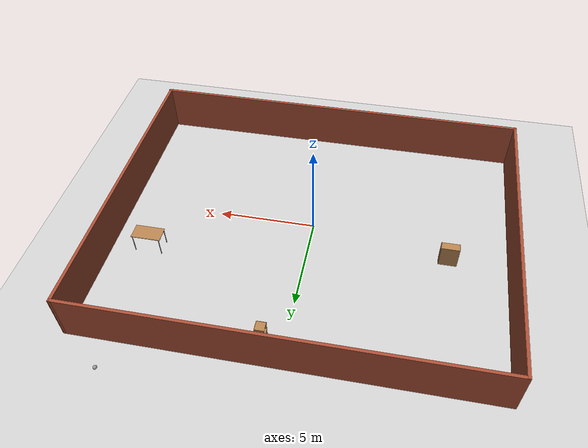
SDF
<sdf version="1.6">
 <world name="default">
  <model name="ground_plane">
   <static>1</static>
   <link name="link">
    <collision name="collision">
     <geometry><plane><normal>0 0 1</normal><size>100 100</size></plane></geometry>
     <surface>
      <contact><collide_bitmask>65535</collide_bitmask></contact>
      <friction><ode><mu>100</mu><mu2>50</mu2></ode></friction>
     </surface>
    </collision>
    <visual name="visual">
     <cast_shadows>0</cast_shadows>
     <geometry><plane><normal>0 0 1</normal><size>100 100</size></plane></geometry>
     <material>
      <script><uri>file://media/materials/scripts/gazebo.material</uri><name>Gazebo/Grey</name></script>
     </material>
    </visual>
   </link>
  </model>
  <model name="MAE">
   <pose>-0.06825 0.737019 0 0 -0 0</pose>
   <link name="Wall_1">
    <collision name="Wall_1_Collision">
     <geometry><box><size>15.577 0.15 2.5</size></box></geometry>
     <pose>0 0 1.25 0 -0 0</pose>
    </collision>
    <visual name="Wall_1_Visual">
     <pose>0 0 1.25 0 -0 0</pose>
     <geometry><box><size>15.577 0.15 2.5</size></box></geometry>
     <material>
      <script><uri>file://media/materials/scripts/gazebo.material</uri><name>Gazebo/Bricks</name></script>
      <ambient>1 1 1 1</ambient>
     </material>
     <meta><layer>0</layer></meta>
    </visual>
    <pose>-9.98245 -0.013284 0 0 0 -1.5708</pose>
   </link>
   <link name="Wall_2">
    <collision name="Wall_2_Collision">
     <geometry><box><size>20.0798 0.15 2.5</size></box></geometry>
     <pose>0 0 1.25 0 -0 0</pose>
    </collision>
    <visual name="Wall_2_Visual">
     <pose>0 0 1.25 0 -0 0</pose>
     <geometry><box><size>20.0798 0.15 2.5</size></box></geometry>
     <material>
      <script><uri>file://media/materials/scripts/gazebo.material</uri><name>Gazebo/Bricks</name></script>
      <ambient>1 1 1 1</ambient>
     </material>
     <meta><layer>0</layer></meta>
    </visual>
    <pose>0.017629 -7.7266 0 0 -0 0</pose>
   </link>
   <link name="Wall_5">
    <collision name="Wall_5_Collision">
     <geometry><box><size>15.6033 0.15 2.5</size></box></geometry>
     <pose>0 0 1.25 0 -0 0</pose>
    </collision>
    <visual name="Wall_5_Visual">
     <pose>0 0 1.25 0 -0 0</pose>
     <geometry><box><size>15.6033 0.15 2.5</size></box></geometry>
     <material>
      <script><uri>file://media/materials/scripts/gazebo.material</uri><name>Gazebo/Bricks</name></script>
      <ambient>1 1 1 1</ambient>
     </material>
     <meta><layer>0</layer></meta>
    </visual>
    <pose>9.96065 1.6e-05 0 0 -0 1.56907</pose>
   </link>
   <link name="Wall_6">
    <collision name="Wall_6_Collision">
     <geometry><box><size>20.08 0.15 2.5</size></box></geometry>
     <pose>0 0 1.25 0 -0 0</pose>
    </collision>
    <visual name="Wall_6_Visual">
     <pose>0 0 1.25 0 -0 0</pose>
     <geometry><box><size>20.08 0.15 2.5</size></box></geometry>
     <material>
      <script><uri>file://media/materials/scripts/gazebo.material</uri><name>Gazebo/Bricks</name></script>
      <ambient>1 1 1 1</ambient>
     </material>
     <meta><layer>0</layer></meta>
    </visual>
    <pose>-0.01755 7.72663 0 0 -0 3.14159</pose>
   </link>
   <static>1</static>
  </model>
  <model name="table">
   <static>1</static>
   <link name="link">
    <collision name="surface">
     <pose>0 0 1 0 -0 0</pose>
     <geometry><box><size>1.5 0.8 0.03</size></box></geometry>
     <surface><friction><ode><mu>0.6</mu><mu2>0.6</mu2></ode></friction></surface>
    </collision>
    <visual name="visual1">
     <pose>0 0 1 0 -0 0</pose>
     <geometry><box><size>1.5 0.8 0.03</size></box></geometry>
     <material>
      <script><uri>file://media/materials/scripts/gazebo.material</uri><name>Gazebo/Wood</name></script>
     </material>
    </visual>
    <collision name="front_left_leg">
     <pose>0.68 0.38 0.5 0 -0 0</pose>
     <geometry><cylinder><radius>0.02</radius><length>1</length></cylinder></geometry>
    </collision>
    <visual name="front_left_leg">
     <pose>0.68 0.38 0.5 0 -0 0</pose>
     <geometry><cylinder><radius>0.02</radius><length>1</length></cylinder></geometry>
     <material>
      <script><uri>file://media/materials/scripts/gazebo.material</uri><name>Gazebo/Grey</name></script>
     </material>
    </visual>
    <collision name="front_right_leg">
     <pose>0.68 -0.38 0.5 0 -0 0</pose>
     <geometry><cylinder><radius>0.02</radius><length>1</length></cylinder></geometry>
    </collision>
    <visual name="front_right_leg">
     <pose>0.68 -0.38 0.5 0 -0 0</pose>
     <geometry><cylinder><radius>0.02</radius><length>1</length></cylinder></geometry>
     <material>
      <script><uri>file://media/materials/scripts/gazebo.material</uri><name>Gazebo/Grey</name></script>
     </material>
    </visual>
    <collision name="back_right_leg">
     <pose>-0.68 -0.38 0.5 0 -0 0</pose>
     <geometry><cylinder><radius>0.02</radius><length>1</length></cylinder></geometry>
    </collision>
    <visual name="back_right_leg">
     <pose>-0.68 -0.38 0.5 0 -0 0</pose>
     <geometry><cylinder><radius>0.02</radius><length>1</length></cylinder></geometry>
     <material>
      <script><uri>file://media/materials/scripts/gazebo.material</uri><name>Gazebo/Grey</name></script>
     </material>
    </visual>
    <collision name="back_left_leg">
     <pose>-0.68 0.38 0.5 0 -0 0</pose>
     <geometry><cylinder><radius>0.02</radius><length>1</length></cylinder></geometry>
    </collision>
    <visual name="back_left_leg">
     <pose>-0.68 0.38 0.5 0 -0 0</pose>
     <geometry><cylinder><radius>0.02</radius><length>1</length></cylinder></geometry>
     <material>
      <script><uri>file://media/materials/scripts/gazebo.material</uri><name>Gazebo/Grey</name></script>
     </material>
    </visual>
   </link>
   <pose>7.90653 2.84231 0 0 -0 0</pose>
  </model>
  <model name="aaball">
   <link name="link_0">
    <inertial>
     <mass>1</mass>
     <inertia><ixx>0.1</ixx><ixy>0</ixy><ixz>0</ixz><iyy>0.1</iyy><iyz>0</iyz><izz>0.1</izz></inertia>
    </inertial>
    <visual name="visual">
     <geometry><sphere><radius>0.1</radius></sphere></geometry>
     <material>
      <lighting>1</lighting>
      <script><uri>file://media/materials/scripts/gazebo.material</uri><name>Gazebo/Grey</name></script>
      <shader type="pixel"><normal_map>__default__</normal_map></shader>
      <ambient>1 1 1 1</ambient>
      <diffuse>1 1 1 1</diffuse>
      <specular>1 1 1 1</specular>
      <emissive>1 1 1 1</emissive>
     </material>
    </visual>
    <collision name="collision">
     <geometry><sphere><radius>0.1</radius></sphere></geometry>
     <surface>
      <friction>
       <ode><mu>1</mu><mu2>1</mu2><fdir1>0 0 0</fdir1><slip1>0</slip1><slip2>0</slip2></ode>
       <torsional>
        <coefficient>1</coefficient>
        <patch_radius>0</patch_radius>
        <surface_radius>0</surface_radius>
        <use_patch_radius>1</use_patch_radius>
        <ode><slip>0</slip></ode>
       </torsional>
      </friction>
      <bounce><restitution_coefficient>0</restitution_coefficient><threshold>1e+06</threshold></bounce>
      <contact>
       <collide_without_contact>0</collide_without_contact>
       <collide_without_contact_bitmask>1</collide_without_contact_bitmask>
       <collide_bitmask>1</collide_bitmask>
       <ode>
        <soft_cfm>0</soft_cfm>
        <soft_erp>0.2</soft_erp>
        <kp>1e+13</kp>
        <kd>1</kd>
        <max_vel>0.01</max_vel>
        <min_depth>0</min_depth>
       </ode>
       <bullet>
        <split_impulse>1</split_impulse>
        <split_impulse_penetration_threshold>-0.01</split_impulse_penetration_threshold>
        <soft_cfm>0</soft_cfm>
        <soft_erp>0.2</soft_erp>
        <kp>1e+13</kp>
        <kd>1</kd>
       </bullet>
      </contact>
     </surface>
    </collision>
   </link>
   <static>0</static>
   <pose>7.81091 9.95248 0.1 0 -0 0</pose>
  </model>
  <model name="bookshelf">
   <static>1</static>
   <link name="link">
    <inertial><mass>1</mass></inertial>
    <collision name="back">
     <pose>0 0.005 0.6 0 -0 0</pose>
     <geometry><box><size>0.9 0.01 1.2</size></box></geometry>
    </collision>
    <visual name="visual1">
     <pose>0 0.005 0.6 0 -0 0</pose>
     <geometry><box><size>0.9 0.01 1.2</size></box></geometry>
     <material>
      <script><uri>file://media/materials/scripts/gazebo.material</uri><name>Gazebo/Wood</name></script>
     </material>
    </visual>
    <collision name="left_side">
     <pose>0.45 -0.195 0.6 0 -0 0</pose>
     <geometry><box><size>0.02 0.4 1.2</size></box></geometry>
    </collision>
    <visual name="visual2">
     <pose>0.45 -0.195 0.6 0 -0 0</pose>
     <geometry><box><size>0.02 0.4 1.2</size></box></geometry>
     <material>
      <script><uri>file://media/materials/scripts/gazebo.material</uri><name>Gazebo/Wood</name></script>
     </material>
    </visual>
    <collision name="right_side">
     <pose>-0.45 -0.195 0.6 0 -0 0</pose>
     <geometry><box><size>0.02 0.4 1.2</size></box></geometry>
    </collision>
    <visual name="visual3">
     <pose>-0.45 -0.195 0.6 0 -0 0</pose>
     <geometry><box><size>0.02 0.4 1.2</size></box></geometry>
     <material>
      <script><uri>file://media/materials/scripts/gazebo.material</uri><name>Gazebo/Wood</name></script>
     </material>
    </visual>
    <collision name="bottom">
     <pose>0 -0.195 0.03 0 -0 0</pose>
     <geometry><box><size>0.88 0.4 0.06</size></box></geometry>
    </collision>
    <visual name="visual4">
     <pose>0 -0.195 0.03 0 -0 0</pose>
     <geometry><box><size>0.88 0.4 0.06</size></box></geometry>
     <material>
      <script><uri>file://media/materials/scripts/gazebo.material</uri><name>Gazebo/Wood</name></script>
     </material>
    </visual>
    <collision name="top">
     <pose>0 -0.195 1.19 0 -0 0</pose>
     <geometry><box><size>0.88 0.4 0.02</size></box></geometry>
    </collision>
    <visual name="visual5">
     <pose>0 -0.195 1.19 0 -0 0</pose>
     <geometry><box><size>0.88 0.4 0.02</size></box></geometry>
     <material>
      <script><uri>file://media/materials/scripts/gazebo.material</uri><name>Gazebo/Wood</name></script>
     </material>
    </visual>
    <collision name="low_shelf">
     <pose>0 -0.195 0.43 0 -0 0</pose>
     <geometry><box><size>0.88 0.4 0.02</size></box></geometry>
    </collision>
    <visual name="visual6">
     <pose>0 -0.195 0.43 0 -0 0</pose>
     <geometry><box><size>0.88 0.4 0.02</size></box></geometry>
     <material>
      <script><uri>file://media/materials/scripts/gazebo.material</uri><name>Gazebo/Wood</name></script>
     </material>
    </visual>
    <collision name="high_shelf">
     <pose>0 -0.195 0.8 0 -0 0</pose>
     <geometry><box><size>0.88 0.4 0.02</size></box></geometry>
    </collision>
    <visual name="visual7">
     <pose>0 -0.195 0.8 0 -0 0</pose>
     <geometry><box><size>0.88 0.4 0.02</size></box></geometry>
     <material>
      <script><uri>file://media/materials/scripts/gazebo.material</uri><name>Gazebo/Wood</name></script>
     </material>
    </visual>
   </link>
   <pose>-7.01544 1.35385 0 0 -0 0</pose>
  </model>
  <model name="cabinet">
   <static>1</static>
   <link name="cabinet_bottom_plate">
    <inertial>
     <pose>0 0 -1 0 -0 0</pose>
     <inertia><ixx>2.05</ixx><ixy>0</ixy><ixz>0</ixz><iyy>2.05</iyy><iyz>0</iyz><izz>2.05</izz></inertia>
     <mass>25</mass>
    </inertial>
    <collision name="cabinet_bottom_plate_geom">
     <pose>0 0 0.01 0 -0 0</pose>
     <geometry><box><size>0.45 0.45 0.02</size></box></geometry>
    </collision>
    <visual name="cabinet_bottom_plate_geom_visual">
     <pose>0 0 0.01 0 -0 0</pose>
     <geometry><box><size>0.45 0.45 0.02</size></box></geometry>
     <material>
      <script><uri>file://media/materials/scripts/gazebo.material</uri><name>Gazebo/Wood</name></script>
     </material>
    </visual>
    <collision name="cabinet_bottom_plate_geom_cabinet_back_plate">
     <pose>0.235 0 0.51 0 -0 0</pose>
     <geometry><box><size>0.02 0.45 1.02</size></box></geometry>
    </collision>
    <visual name="cabinet_bottom_plate_geom_cabinet_back_plate_visual">
     <pose>0.235 0 0.51 0 -0 0</pose>
     <geometry><box><size>0.02 0.45 1.02</size></box></geometry>
     <material>
      <script><uri>file://media/materials/scripts/gazebo.material</uri><name>Gazebo/Wood</name></script>
     </material>
    </visual>
    <collision name="cabinet_bottom_plate_geom_cabinet_left_plate">
     <pose>0 0.235 0.51 0 -0 0</pose>
     <geometry><box><size>0.45 0.02 1.02</size></box></geometry>
    </collision>
    <visual name="cabinet_bottom_plate_geom_cabinet_left_plate_visual">
     <pose>0 0.235 0.51 0 -0 0</pose>
     <geometry><box><size>0.45 0.02 1.02</size></box></geometry>
     <material>
      <script><uri>file://media/materials/scripts/gazebo.material</uri><name>Gazebo/Wood</name></script>
     </material>
    </visual>
    <collision name="cabinet_bottom_plate_geom_cabinet_middle_plate">
     <pose>0 0 0.51 0 -0 0</pose>
     <geometry><box><size>0.45 0.45 0.02</size></box></geometry>
    </collision>
    <visual name="cabinet_bottom_plate_geom_cabinet_middle_plate_visual">
     <pose>0 0 0.51 0 -0 0</pose>
     <geometry><box><size>0.45 0.45 0.02</size></box></geometry>
     <material>
      <script><uri>file://media/materials/scripts/gazebo.material</uri><name>Gazebo/Wood</name></script>
     </material>
    </visual>
    <collision name="cabinet_bottom_plate_geom_cabinet_right_plate">
     <pose>0 -0.235 0.51 0 -0 0</pose>
     <geometry><box><size>0.45 0.02 1.02</size></box></geometry>
    </collision>
    <visual name="cabinet_bottom_plate_geom_cabinet_right_plate_visual">
     <pose>0 -0.235 0.51 0 -0 0</pose>
     <geometry><box><size>0.45 0.02 1.02</size></box></geometry>
     <material>
      <script><uri>file://media/materials/scripts/gazebo.material</uri><name>Gazebo/Wood</name></script>
     </material>
    </visual>
    <collision name="cabinet_bottom_plate_geom_cabinet_top_plate">
     <pose>0 0 1.01 0 -0 0</pose>
     <geometry><box><size>0.45 0.45 0.02</size></box></geometry>
    </collision>
    <visual name="cabinet_bottom_plate_geom_cabinet_top_plate_visual">
     <pose>0 0 1.01 0 -0 0</pose>
     <geometry><box><size>0.45 0.45 0.02</size></box></geometry>
     <material>
      <script><uri>file://media/materials/scripts/gazebo.material</uri><name>Gazebo/Wood</name></script>
     </material>
    </visual>
   </link>
   <pose>1.06108 7.16897 0 0 -0 0</pose>
  </model>
 </world>
</sdf>
